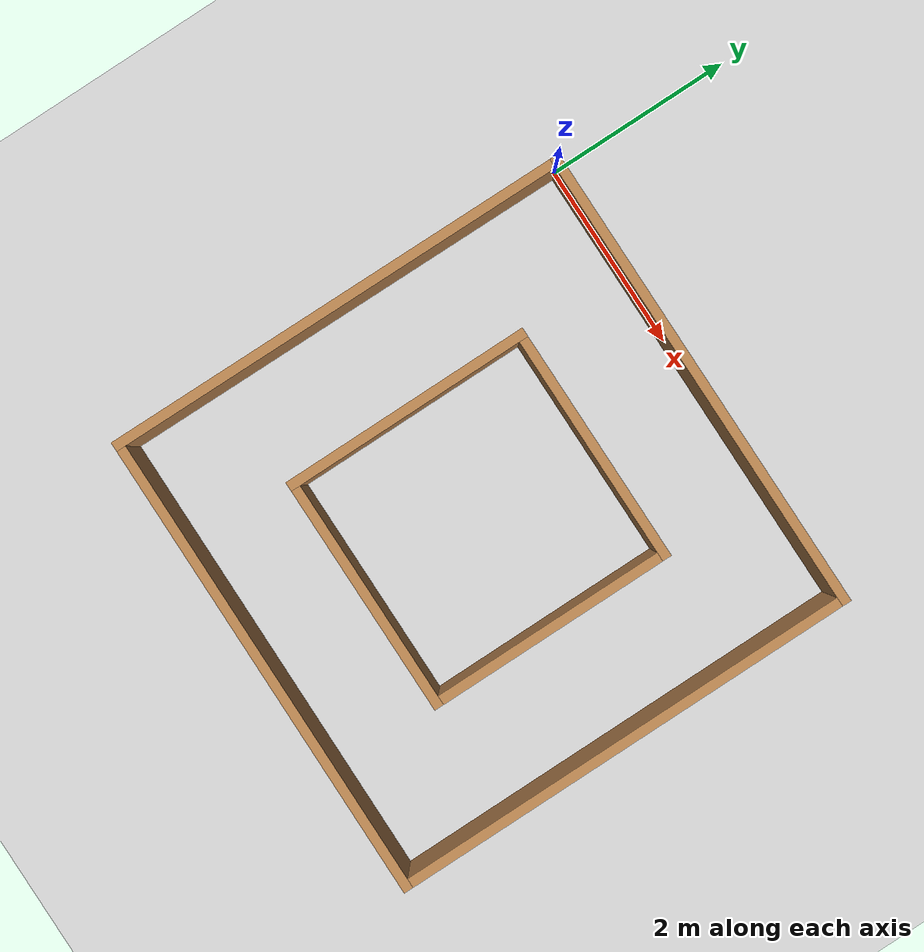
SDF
<sdf version="1.7">
 <world name="default">
  <light name="sun" type="directional">
   <pose>0 0 10 0 -0 0</pose>
   <diffuse>0.8 0.8 0.8 1</diffuse>
   <specular>0.2 0.2 0.2 1</specular>
   <attenuation>
    <range>1000</range>
    <constant>0.9</constant>
    <linear>0.01</linear>
    <quadratic>0.001</quadratic>
   </attenuation>
   <direction>-0.5 0.1 -0.9</direction>
   <spot><inner_angle>0</inner_angle><outer_angle>0</outer_angle><falloff>0</falloff></spot>
  </light>
  <model name="ground_plane">
   <static>1</static>
   <link name="link">
    <collision name="collision">
     <geometry><plane><normal>0 0 1</normal><size>100 100</size></plane></geometry>
     <surface>
      <contact><collide_bitmask>65535</collide_bitmask></contact>
      <friction><ode><mu>100</mu><mu2>50</mu2></ode></friction>
     </surface>
    </collision>
    <visual name="visual">
     <cast_shadows>0</cast_shadows>
     <geometry><plane><normal>0 0 1</normal><size>100 100</size></plane></geometry>
     <material>
      <script><uri>file://media/materials/scripts/gazebo.material</uri><name>Gazebo/Grey</name></script>
     </material>
    </visual>
   </link>
  </model>
  <gravity>0 0 -9.8</gravity>
  <magnetic_field>6e-06 2.3e-05 -4.2e-05</magnetic_field>
  <atmosphere type="adiabatic"/>
  <physics type="ode">
   <max_step_size>0.001</max_step_size>
   <real_time_factor>1</real_time_factor>
   <real_time_update_rate>1000</real_time_update_rate>
  </physics>
  <scene><ambient>0.4 0.4 0.4 1</ambient><background>0.7 0.7 0.7 1</background><shadows>1</shadows></scene>
  <spherical_coordinates>
   <surface_model>EARTH_WGS84</surface_model>
   <latitude_deg>0</latitude_deg>
   <longitude_deg>0</longitude_deg>
   <elevation>0</elevation>
   <heading_deg>0</heading_deg>
  </spherical_coordinates>
  <model name="New_simple_maze">
   <pose>2.48471 -2.49992 0 0 -0 0</pose>
   <link name="Wall_0">
    <collision name="Wall_0_Collision">
     <geometry><box><size>5.1 0.1 1</size></box></geometry>
     <pose>0 0 0.5 0 -0 0</pose>
    </collision>
    <visual name="Wall_0_Visual">
     <pose>0 0 0.5 0 -0 0</pose>
     <geometry><box><size>5.1 0.1 1</size></box></geometry>
     <material>
      <script><uri>file://media/materials/scripts/gazebo.material</uri><name>Gazebo/Wood</name></script>
      <ambient>1 1 1 1</ambient>
     </material>
     <meta><layer>0</layer></meta>
    </visual>
    <pose>0.015286 2.49992 0 0 -0 0</pose>
   </link>
   <link name="Wall_11">
    <collision name="Wall_11_Collision">
     <geometry><box><size>2.7 0.1 1</size></box></geometry>
     <pose>0 0 0.5 0 -0 0</pose>
    </collision>
    <visual name="Wall_11_Visual">
     <pose>0 0 0.5 0 -0 0</pose>
     <geometry><box><size>2.7 0.1 1</size></box></geometry>
     <material>
      <script><uri>file://media/materials/scripts/gazebo.material</uri><name>Gazebo/Wood</name></script>
      <ambient>1 1 1 1</ambient>
     </material>
     <meta><layer>0</layer></meta>
    </visual>
    <pose>-1.28471 -7.8e-05 0 0 -0 -1.5708</pose>
   </link>
   <link name="Wall_13">
    <collision name="Wall_13_Collision">
     <geometry><box><size>2.6 0.1 1</size></box></geometry>
     <pose>0 0 0.5 0 -0 0</pose>
    </collision>
    <visual name="Wall_13_Visual">
     <pose>0 0 0.5 0 -0 0</pose>
     <geometry><box><size>2.6 0.1 1</size></box></geometry>
     <material>
      <script><uri>file://media/materials/scripts/gazebo.material</uri><name>Gazebo/Wood</name></script>
      <ambient>1 1 1 1</ambient>
     </material>
     <meta><layer>0</layer></meta>
    </visual>
    <pose>-0.034714 -1.30008 0 0 -0 0</pose>
   </link>
   <link name="Wall_15">
    <collision name="Wall_15_Collision">
     <geometry><box><size>2.6 0.1 1</size></box></geometry>
     <pose>0 0 0.5 0 -0 0</pose>
    </collision>
    <visual name="Wall_15_Visual">
     <pose>0 0 0.5 0 -0 0</pose>
     <geometry><box><size>2.6 0.1 1</size></box></geometry>
     <material>
      <script><uri>file://media/materials/scripts/gazebo.material</uri><name>Gazebo/Wood</name></script>
      <ambient>1 1 1 1</ambient>
     </material>
     <meta><layer>0</layer></meta>
    </visual>
    <pose>-0.034714 1.29992 0 0 -0 0</pose>
   </link>
   <link name="Wall_17">
    <collision name="Wall_17_Collision">
     <geometry><box><size>2.7 0.1 1</size></box></geometry>
     <pose>0 0 0.5 0 -0 0</pose>
    </collision>
    <visual name="Wall_17_Visual">
     <pose>0 0 0.5 0 -0 0</pose>
     <geometry><box><size>2.7 0.1 1</size></box></geometry>
     <material>
      <script><uri>file://media/materials/scripts/gazebo.material</uri><name>Gazebo/Wood</name></script>
      <ambient>1 1 1 1</ambient>
     </material>
     <meta><layer>0</layer></meta>
    </visual>
    <pose>1.21529 -7.8e-05 0 0 -0 -1.5708</pose>
   </link>
   <link name="Wall_2">
    <collision name="Wall_2_Collision">
     <geometry><box><size>5.08509 0.1 1</size></box></geometry>
     <pose>0 0 0.5 0 -0 0</pose>
    </collision>
    <visual name="Wall_2_Visual">
     <pose>0 0 0.5 0 -0 0</pose>
     <geometry><box><size>5.08509 0.1 1</size></box></geometry>
     <material>
      <script><uri>file://media/materials/scripts/gazebo.material</uri><name>Gazebo/Wood</name></script>
      <ambient>1 1 1 1</ambient>
     </material>
     <meta><layer>0</layer></meta>
    </visual>
    <pose>-2.49992 0.007422 0 0 -0 -1.5769</pose>
   </link>
   <link name="Wall_4">
    <collision name="Wall_4_Collision">
     <geometry><box><size>5.13044 0.1 1</size></box></geometry>
     <pose>0 0 0.5 0 -0 0</pose>
    </collision>
    <visual name="Wall_4_Visual">
     <pose>0 0 0.5 0 -0 0</pose>
     <geometry><box><size>5.13044 0.1 1</size></box></geometry>
     <material>
      <script><uri>file://media/materials/scripts/gazebo.material</uri><name>Gazebo/Wood</name></script>
      <ambient>1 1 1 1</ambient>
     </material>
     <meta><layer>0</layer></meta>
    </visual>
    <pose>7.8e-05 -2.49258 0 0 -0 -0.002982</pose>
   </link>
   <link name="Wall_9">
    <collision name="Wall_9_Collision">
     <geometry><box><size>5.1 0.1 1</size></box></geometry>
     <pose>0 0 0.5 0 -0 0</pose>
    </collision>
    <visual name="Wall_9_Visual">
     <pose>0 0 0.5 0 -0 0</pose>
     <geometry><box><size>5.1 0.1 1</size></box></geometry>
     <material>
      <script><uri>file://media/materials/scripts/gazebo.material</uri><name>Gazebo/Wood</name></script>
      <ambient>1 1 1 1</ambient>
     </material>
     <meta><layer>0</layer></meta>
    </visual>
    <pose>2.51529 -7.8e-05 0 0 -0 1.5708</pose>
   </link>
   <static>1</static>
  </model>
 </world>
</sdf>
